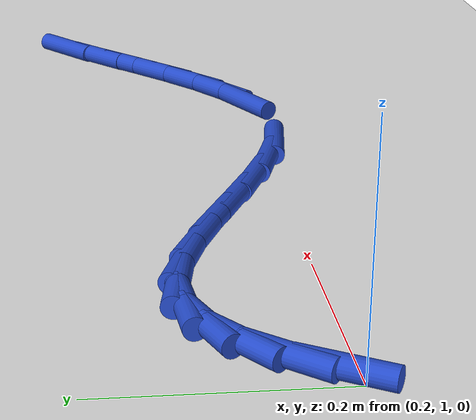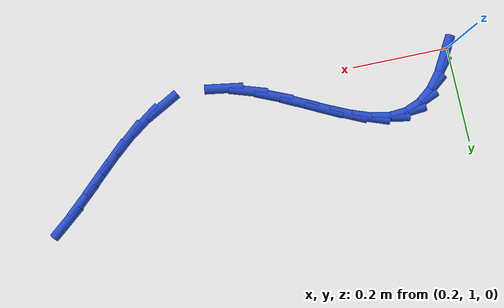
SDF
<sdf version="1.6">
 <world name="default">
  <model name="ground_plane">
   <static>1</static>
   <link name="link">
    <collision name="collision">
     <geometry><plane><normal>0 0 1</normal><size>100 100</size></plane></geometry>
     <surface><friction><ode><mu>100</mu><mu2>50</mu2></ode></friction></surface>
    </collision>
    <visual name="visual">
     <cast_shadows>0</cast_shadows>
     <geometry><plane><normal>0 0 1</normal><size>100 100</size></plane></geometry>
     <material>
      <script><uri>file://media/materials/scripts/gazebo.material</uri><name>Gazebo/WhiteGlow</name></script>
     </material>
    </visual>
   </link>
  </model>
  <model name="line">
   <link name="link_19">
    <pose>0.21022988549526805 1.012656398478676 0.01 0 1.57 1.0466516601180527</pose>
    <collision name="collision">
     <geometry><cylinder><radius>0.01</radius><length>0.08</length></cylinder></geometry>
    </collision>
    <visual name="visual">
     <material>
      <script><name>Gazebo/Blue</name><uri>file://media/materials/scripts/gazebo.material</uri></script>
     </material>
     <geometry><cylinder><radius>0.01</radius><length>0.08</length></cylinder></geometry>
    </visual>
   </link>
   <link name="link_20">
    <pose>0.23164812932234075 1.0497071610565327 0.01 0 1.57 0.8842579940270712</pose>
    <collision name="collision">
     <geometry><cylinder><radius>0.01</radius><length>0.08</length></cylinder></geometry>
    </collision>
    <visual name="visual">
     <material>
      <script><name>Gazebo/Blue</name><uri>file://media/materials/scripts/gazebo.material</uri></script>
     </material>
     <geometry><cylinder><radius>0.01</radius><length>0.08</length></cylinder></geometry>
    </visual>
   </link>
   <link name="link_21">
    <pose>0.25606492594770686 1.0795007109246708 0.01 0 1.57 0.6621961379086412</pose>
    <collision name="collision">
     <geometry><cylinder><radius>0.01</radius><length>0.08</length></cylinder></geometry>
    </collision>
    <visual name="visual">
     <material>
      <script><name>Gazebo/Blue</name><uri>file://media/materials/scripts/gazebo.material</uri></script>
     </material>
     <geometry><cylinder><radius>0.01</radius><length>0.08</length></cylinder></geometry>
    </visual>
   </link>
   <link name="link_22">
    <pose>0.2838167662530473 1.1011368749529515 0.01 0 1.57 0.38076025608026276</pose>
    <collision name="collision">
     <geometry><cylinder><radius>0.01</radius><length>0.08</length></cylinder></geometry>
    </collision>
    <visual name="visual">
     <material>
      <script><name>Gazebo/Blue</name><uri>file://media/materials/scripts/gazebo.material</uri></script>
     </material>
     <geometry><cylinder><radius>0.01</radius><length>0.08</length></cylinder></geometry>
    </visual>
   </link>
   <link name="link_23">
    <pose>0.31524014112004295 1.1137154800112357 0.01 0 1.57 0.0738358753459542</pose>
    <collision name="collision">
     <geometry><cylinder><radius>0.01</radius><length>0.08</length></cylinder></geometry>
    </collision>
    <visual name="visual">
     <material>
      <script><name>Gazebo/Blue</name><uri>file://media/materials/scripts/gazebo.material</uri></script>
     </material>
     <geometry><cylinder><radius>0.01</radius><length>0.08</length></cylinder></geometry>
    </visual>
   </link>
   <link name="link_24">
    <pose>0.35067154143037493 1.1163363529693844 0.01 0 1.57 -0.19113792418683165</pose>
    <collision name="collision">
     <geometry><cylinder><radius>0.01</radius><length>0.08</length></cylinder></geometry>
    </collision>
    <visual name="visual">
     <material>
      <script><name>Gazebo/Blue</name><uri>file://media/materials/scripts/gazebo.material</uri></script>
     </material>
     <geometry><cylinder><radius>0.01</radius><length>0.08</length></cylinder></geometry>
    </visual>
   </link>
   <link name="link_25">
    <pose>0.39025907240353497 1.1086761614166027 0.01 0 1.57 -0.3521386740614026</pose>
    <collision name="collision">
     <geometry><cylinder><radius>0.01</radius><length>0.08</length></cylinder></geometry>
    </collision>
    <visual name="visual">
     <material>
      <script><name>Gazebo/Blue</name><uri>file://media/materials/scripts/gazebo.material</uri></script>
     </material>
     <geometry><cylinder><radius>0.01</radius><length>0.08</length></cylinder></geometry>
    </visual>
   </link>
   <link name="link_26">
    <pose>0.4333579912013606 1.092839289778902 0.01 0 1.57 -0.435142360565901</pose>
    <collision name="collision">
     <geometry><cylinder><radius>0.01</radius><length>0.08</length></cylinder></geometry>
    </collision>
    <visual name="visual">
     <material>
      <script><name>Gazebo/Blue</name><uri>file://media/materials/scripts/gazebo.material</uri></script>
     </material>
     <geometry><cylinder><radius>0.01</radius><length>0.08</length></cylinder></geometry>
    </visual>
   </link>
   <link name="link_27">
    <pose>0.47911500943818575 1.0715686931794475 0.01 0 1.57 -0.4666781961913654</pose>
    <collision name="collision">
     <geometry><cylinder><radius>0.01</radius><length>0.08</length></cylinder></geometry>
    </collision>
    <visual name="visual">
     <material>
      <script><name>Gazebo/Blue</name><uri>file://media/materials/scripts/gazebo.material</uri></script>
     </material>
     <geometry><cylinder><radius>0.01</radius><length>0.08</length></cylinder></geometry>
    </visual>
   </link>
   <link name="link_28">
    <pose>0.5266768377633952 1.0476073296960968 0.01 0 1.57 -0.45790078772490445</pose>
    <collision name="collision">
     <geometry><cylinder><radius>0.01</radius><length>0.08</length></cylinder></geometry>
    </collision>
    <visual name="visual">
     <material>
      <script><name>Gazebo/Blue</name><uri>file://media/materials/scripts/gazebo.material</uri></script>
     </material>
     <geometry><cylinder><radius>0.01</radius><length>0.08</length></cylinder></geometry>
    </visual>
   </link>
   <link name="link_29">
    <pose>0.5751901868263752 1.0236981574067077 0.01 0 1.57 -0.4097562356419065</pose>
    <collision name="collision">
     <geometry><cylinder><radius>0.01</radius><length>0.08</length></cylinder></geometry>
    </collision>
    <visual name="visual">
     <material>
      <script><name>Gazebo/Blue</name><uri>file://media/materials/scripts/gazebo.material</uri></script>
     </material>
     <geometry><cylinder><radius>0.01</radius><length>0.08</length></cylinder></geometry>
    </visual>
   </link>
   <link name="link_30">
    <pose>0.6238017672765099 1.0025841343891377 0.01 0 1.57 -0.3146579462180876</pose>
    <collision name="collision">
     <geometry><cylinder><radius>0.01</radius><length>0.08</length></cylinder></geometry>
    </collision>
    <visual name="visual">
     <material>
      <script><name>Gazebo/Blue</name><uri>file://media/materials/scripts/gazebo.material</uri></script>
     </material>
     <geometry><cylinder><radius>0.01</radius><length>0.08</length></cylinder></geometry>
    </visual>
   </link>
   <link name="link_31">
    <pose>0.6716582897631851 0.9870082187212441 0.01 0 1.57 -0.15644379240625356</pose>
    <collision name="collision">
     <geometry><cylinder><radius>0.01</radius><length>0.08</length></cylinder></geometry>
    </collision>
    <visual name="visual">
     <material>
      <script><name>Gazebo/Blue</name><uri>file://media/materials/scripts/gazebo.material</uri></script>
     </material>
     <geometry><cylinder><radius>0.01</radius><length>0.08</length></cylinder></geometry>
    </visual>
   </link>
   <link name="link_34">
    <pose>0.8035721628725282 0.996344826536485 0.01 0 1.57 0.4936535747990462</pose>
    <collision name="collision">
     <geometry><cylinder><radius>0.01</radius><length>0.08</length></cylinder></geometry>
    </collision>
    <visual name="visual">
     <material>
      <script><name>Gazebo/Blue</name><uri>file://media/materials/scripts/gazebo.material</uri></script>
     </material>
     <geometry><cylinder><radius>0.01</radius><length>0.08</length></cylinder></geometry>
    </visual>
   </link>
   <link name="link_35">
    <pose>0.8436820367591463 1.0179275629589475 0.01 0 1.57 0.6236859543090459</pose>
    <collision name="collision">
     <geometry><cylinder><radius>0.01</radius><length>0.08</length></cylinder></geometry>
    </collision>
    <visual name="visual">
     <material>
      <script><name>Gazebo/Blue</name><uri>file://media/materials/scripts/gazebo.material</uri></script>
     </material>
     <geometry><cylinder><radius>0.01</radius><length>0.08</length></cylinder></geometry>
    </visual>
   </link>
   <link name="link_36">
    <pose>0.8826843056840552 1.0459892380928566 0.01 0 1.57 0.7060550935219422</pose>
    <collision name="collision">
     <geometry><cylinder><radius>0.01</radius><length>0.08</length></cylinder></geometry>
    </collision>
    <visual name="visual">
     <material>
      <script><name>Gazebo/Blue</name><uri>file://media/materials/scripts/gazebo.material</uri></script>
     </material>
     <geometry><cylinder><radius>0.01</radius><length>0.08</length></cylinder></geometry>
    </visual>
   </link>
   <link name="link_37">
    <pose>0.9211100510688603 1.0787545809782826 0.01 0 1.57 0.7491454299006022</pose>
    <collision name="collision">
     <geometry><cylinder><radius>0.01</radius><length>0.08</length></cylinder></geometry>
    </collision>
    <visual name="visual">
     <material>
      <script><name>Gazebo/Blue</name><uri>file://media/materials/scripts/gazebo.material</uri></script>
     </material>
     <geometry><cylinder><radius>0.01</radius><length>0.08</length></cylinder></geometry>
    </visual>
   </link>
   <link name="link_38">
    <pose>0.9594903543351674 1.1144483206552955 0.01 0 1.57 0.7587369063733563</pose>
    <collision name="collision">
     <geometry><cylinder><radius>0.01</radius><length>0.08</length></cylinder></geometry>
    </collision>
    <visual name="visual">
     <material>
      <script><name>Gazebo/Blue</name><uri>file://media/materials/scripts/gazebo.material</uri></script>
     </material>
     <geometry><cylinder><radius>0.01</radius><length>0.08</length></cylinder></geometry>
    </visual>
   </link>
   <link name="link_39">
    <pose>0.9983562969045815 1.1512951861639658 0.01 0 1.57 0.7373722036935721</pose>
    <collision name="collision">
     <geometry><cylinder><radius>0.01</radius><length>0.08</length></cylinder></geometry>
    </collision>
    <visual name="visual">
     <material>
      <script><name>Gazebo/Blue</name><uri>file://media/materials/scripts/gazebo.material</uri></script>
     </material>
     <geometry><cylinder><radius>0.01</radius><length>0.08</length></cylinder></geometry>
    </visual>
   </link>
   <link name="link_40">
    <pose>1.0382389601987079 1.1875199065443631 0.01 0 1.57 0.684711540677317</pose>
    <collision name="collision">
     <geometry><cylinder><radius>0.01</radius><length>0.08</length></cylinder></geometry>
    </collision>
    <visual name="visual">
     <material>
      <script><name>Gazebo/Blue</name><uri>file://media/materials/scripts/gazebo.material</uri></script>
     </material>
     <geometry><cylinder><radius>0.01</radius><length>0.08</length></cylinder></geometry>
    </visual>
   </link>
  </model>
 </world>
</sdf>
